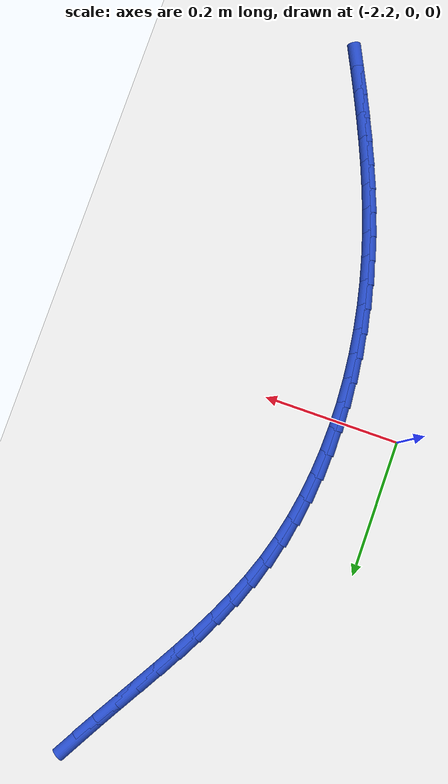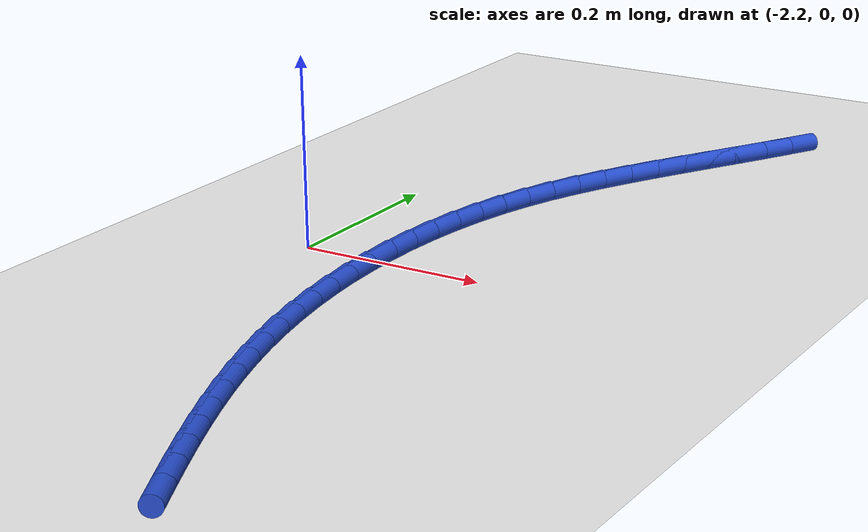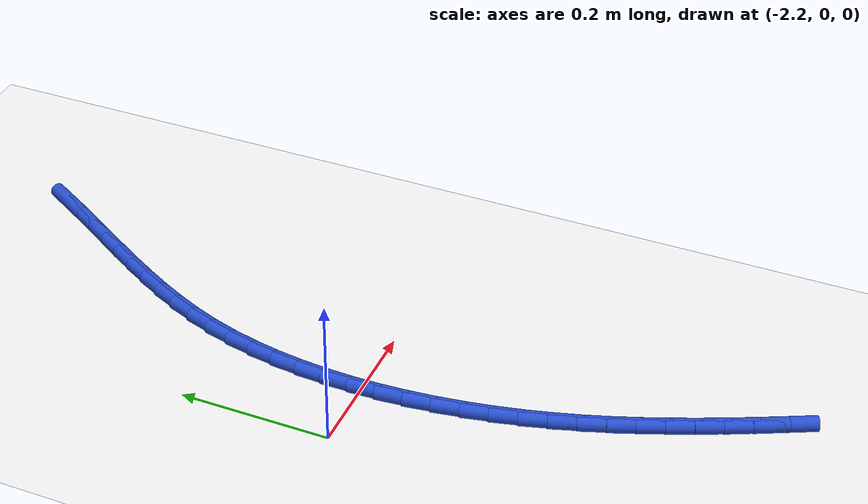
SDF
<sdf version="1.6">
 <world name="default">
  <model name="ground_plane">
   <static>1</static>
   <link name="link">
    <collision name="collision">
     <geometry><plane><normal>0 0 1</normal><size>100 100</size></plane></geometry>
     <surface><friction><ode><mu>100</mu><mu2>50</mu2></ode></friction></surface>
    </collision>
    <visual name="visual">
     <cast_shadows>0</cast_shadows>
     <geometry><plane><normal>0 0 1</normal><size>100 100</size></plane></geometry>
     <material>
      <script><uri>file://media/materials/scripts/gazebo.material</uri><name>Gazebo/WhiteGlow</name></script>
     </material>
    </visual>
   </link>
  </model>
  <model name="line">
   <link name="link_80">
    <pose>-1.9100694375321152 0.5332249161558642 0.01 0 1.57 1.0468837242007711</pose>
    <collision name="collision">
     <geometry><cylinder><radius>0.01</radius><length>0.08</length></cylinder></geometry>
    </collision>
    <visual name="visual">
     <material>
      <script><name>Gazebo/Blue</name><uri>file://media/materials/scripts/gazebo.material</uri></script>
     </material>
     <geometry><cylinder><radius>0.01</radius><length>0.08</length></cylinder></geometry>
    </visual>
   </link>
   <link name="link_81">
    <pose>-1.9280093425325109 0.5021745970844498 0.01 0 1.57 1.0333127197407073</pose>
    <collision name="collision">
     <geometry><cylinder><radius>0.01</radius><length>0.08</length></cylinder></geometry>
    </collision>
    <visual name="visual">
     <material>
      <script><name>Gazebo/Blue</name><uri>file://media/materials/scripts/gazebo.material</uri></script>
     </material>
     <geometry><cylinder><radius>0.01</radius><length>0.08</length></cylinder></geometry>
    </visual>
   </link>
   <link name="link_82">
    <pose>-1.946353771208603 0.47139608739009886 0.01 0 1.57 1.027797524962692</pose>
    <collision name="collision">
     <geometry><cylinder><radius>0.01</radius><length>0.08</length></cylinder></geometry>
    </collision>
    <visual name="visual">
     <material>
      <script><name>Gazebo/Blue</name><uri>file://media/materials/scripts/gazebo.material</uri></script>
     </material>
     <geometry><cylinder><radius>0.01</radius><length>0.08</length></cylinder></geometry>
    </visual>
   </link>
   <link name="link_83">
    <pose>-1.9648371223148928 0.44076983398572844 0.01 0 1.57 1.030363795955081</pose>
    <collision name="collision">
     <geometry><cylinder><radius>0.01</radius><length>0.08</length></cylinder></geometry>
    </collision>
    <visual name="visual">
     <material>
      <script><name>Gazebo/Blue</name><uri>file://media/materials/scripts/gazebo.material</uri></script>
     </material>
     <geometry><cylinder><radius>0.01</radius><length>0.08</length></cylinder></geometry>
    </visual>
   </link>
   <link name="link_84">
    <pose>-1.9831937946058846 0.4101762837842545 0.01 0 1.57 1.0410821133472825</pose>
    <collision name="collision">
     <geometry><cylinder><radius>0.01</radius><length>0.08</length></cylinder></geometry>
    </collision>
    <visual name="visual">
     <material>
      <script><name>Gazebo/Blue</name><uri>file://media/materials/scripts/gazebo.material</uri></script>
     </material>
     <geometry><cylinder><radius>0.01</radius><length>0.08</length></cylinder></geometry>
    </visual>
   </link>
   <link name="link_85">
    <pose>-2.001158186836081 0.37949588369859394 0.01 0 1.57 1.0600640031474318</pose>
    <collision name="collision">
     <geometry><cylinder><radius>0.01</radius><length>0.08</length></cylinder></geometry>
    </collision>
    <visual name="visual">
     <material>
      <script><name>Gazebo/Blue</name><uri>file://media/materials/scripts/gazebo.material</uri></script>
     </material>
     <geometry><cylinder><radius>0.01</radius><length>0.08</length></cylinder></geometry>
    </visual>
   </link>
   <link name="link_86">
    <pose>-2.0184646977599856 0.34860908064166385 0.01 0 1.57 1.0874415083119322</pose>
    <collision name="collision">
     <geometry><cylinder><radius>0.01</radius><length>0.08</length></cylinder></geometry>
    </collision>
    <visual name="visual">
     <material>
      <script><name>Gazebo/Blue</name><uri>file://media/materials/scripts/gazebo.material</uri></script>
     </material>
     <geometry><cylinder><radius>0.01</radius><length>0.08</length></cylinder></geometry>
    </visual>
   </link>
   <link name="link_87">
    <pose>-2.034847726132102 0.3173963215263802 0.01 0 1.57 1.12332831876361</pose>
    <collision name="collision">
     <geometry><cylinder><radius>0.01</radius><length>0.08</length></cylinder></geometry>
    </collision>
    <visual name="visual">
     <material>
      <script><name>Gazebo/Blue</name><uri>file://media/materials/scripts/gazebo.material</uri></script>
     </material>
     <geometry><cylinder><radius>0.01</radius><length>0.08</length></cylinder></geometry>
    </visual>
   </link>
   <link name="link_88">
    <pose>-2.0500416707069316 0.2857380532656597 0.01 0 1.57 1.1677606472636122</pose>
    <collision name="collision">
     <geometry><cylinder><radius>0.01</radius><length>0.08</length></cylinder></geometry>
    </collision>
    <visual name="visual">
     <material>
      <script><name>Gazebo/Blue</name><uri>file://media/materials/scripts/gazebo.material</uri></script>
     </material>
     <geometry><cylinder><radius>0.01</radius><length>0.08</length></cylinder></geometry>
    </visual>
   </link>
   <link name="link_89">
    <pose>-2.0637809302389796 0.2535147227724192 0.01 0 1.57 1.220618413463724</pose>
    <collision name="collision">
     <geometry><cylinder><radius>0.01</radius><length>0.08</length></cylinder></geometry>
    </collision>
    <visual name="visual">
     <material>
      <script><name>Gazebo/Blue</name><uri>file://media/materials/scripts/gazebo.material</uri></script>
     </material>
     <geometry><cylinder><radius>0.01</radius><length>0.08</length></cylinder></geometry>
    </visual>
   </link>
   <link name="link_90">
    <pose>-2.075799903482748 0.2206067769595757 0.01 0 1.57 1.2797369807946914</pose>
    <collision name="collision">
     <geometry><cylinder><radius>0.01</radius><length>0.08</length></cylinder></geometry>
    </collision>
    <visual name="visual">
     <material>
      <script><name>Gazebo/Blue</name><uri>file://media/materials/scripts/gazebo.material</uri></script>
     </material>
     <geometry><cylinder><radius>0.01</radius><length>0.08</length></cylinder></geometry>
    </visual>
   </link>
   <link name="link_91">
    <pose>-2.085887430314045 0.18693306636379878 0.01 0 1.57 1.3375905467505356</pose>
    <collision name="collision">
     <geometry><cylinder><radius>0.01</radius><length>0.08</length></cylinder></geometry>
    </collision>
    <visual name="visual">
     <material>
      <script><name>Gazebo/Blue</name><uri>file://media/materials/scripts/gazebo.material</uri></script>
     </material>
     <geometry><cylinder><radius>0.01</radius><length>0.08</length></cylinder></geometry>
    </visual>
   </link>
   <link name="link_92">
    <pose>-2.094050477713922 0.15256631181464986 0.01 0 1.57 1.3924423416790535</pose>
    <collision name="collision">
     <geometry><cylinder><radius>0.01</radius><length>0.08</length></cylinder></geometry>
    </collision>
    <visual name="visual">
     <material>
      <script><name>Gazebo/Blue</name><uri>file://media/materials/scripts/gazebo.material</uri></script>
     </material>
     <geometry><cylinder><radius>0.01</radius><length>0.08</length></cylinder></geometry>
    </visual>
   </link>
   <link name="link_93">
    <pose>-2.10035063524566 0.11761776577083377 0.01 0 1.57 1.4444549889144385</pose>
    <collision name="collision">
     <geometry><cylinder><radius>0.01</radius><length>0.08</length></cylinder></geometry>
    </collision>
    <visual name="visual">
     <material>
      <script><name>Gazebo/Blue</name><uri>file://media/materials/scripts/gazebo.material</uri></script>
     </material>
     <geometry><cylinder><radius>0.01</radius><length>0.08</length></cylinder></geometry>
    </visual>
   </link>
   <link name="link_94">
    <pose>-2.1048494924725465 0.08219868069106086 0.01 0 1.57 1.493830939239148</pose>
    <collision name="collision">
     <geometry><cylinder><radius>0.01</radius><length>0.08</length></cylinder></geometry>
    </collision>
    <visual name="visual">
     <material>
      <script><name>Gazebo/Blue</name><uri>file://media/materials/scripts/gazebo.material</uri></script>
     </material>
     <geometry><cylinder><radius>0.01</radius><length>0.08</length></cylinder></geometry>
    </visual>
   </link>
   <link name="link_95">
    <pose>-2.1076086389578683 0.04642030903404255 0.01 0 1.57 1.540798856566385</pose>
    <collision name="collision">
     <geometry><cylinder><radius>0.01</radius><length>0.08</length></cylinder></geometry>
    </collision>
    <visual name="visual">
     <material>
      <script><name>Gazebo/Blue</name><uri>file://media/materials/scripts/gazebo.material</uri></script>
     </material>
     <geometry><cylinder><radius>0.01</radius><length>0.08</length></cylinder></geometry>
    </visual>
   </link>
   <link name="link_96">
    <pose>-2.1086896642649138 0.010393903258489863 0.01 0 1.57 -1.5559893584545303</pose>
    <collision name="collision">
     <geometry><cylinder><radius>0.01</radius><length>0.08</length></cylinder></geometry>
    </collision>
    <visual name="visual">
     <material>
      <script><name>Gazebo/Blue</name><uri>file://media/materials/scripts/gazebo.material</uri></script>
     </material>
     <geometry><cylinder><radius>0.01</radius><length>0.08</length></cylinder></geometry>
    </visual>
   </link>
   <link name="link_97">
    <pose>-2.108154157956972 -0.025769284176886068 0.01 0 1.57 -1.513095251730046</pose>
    <collision name="collision">
     <geometry><cylinder><radius>0.01</radius><length>0.08</length></cylinder></geometry>
    </collision>
    <visual name="visual">
     <material>
      <script><name>Gazebo/Blue</name><uri>file://media/materials/scripts/gazebo.material</uri></script>
     </material>
     <geometry><cylinder><radius>0.01</radius><length>0.08</length></cylinder></geometry>
    </visual>
   </link>
   <link name="link_98">
    <pose>-2.1060637095973296 -0.06195800081337346 0.01 0 1.57 -1.471854429295454</pose>
    <collision name="collision">
     <geometry><cylinder><radius>0.01</radius><length>0.08</length></cylinder></geometry>
    </collision>
    <visual name="visual">
     <material>
      <script><name>Gazebo/Blue</name><uri>file://media/materials/scripts/gazebo.material</uri></script>
     </material>
     <geometry><cylinder><radius>0.01</radius><length>0.08</length></cylinder></geometry>
    </visual>
   </link>
   <link name="link_99">
    <pose>-2.1024799087492756 -0.0980609941922628 0.01 0 1.57 -1.4320084774964594</pose>
    <collision name="collision">
     <geometry><cylinder><radius>0.01</radius><length>0.08</length></cylinder></geometry>
    </collision>
    <visual name="visual">
     <material>
      <script><name>Gazebo/Blue</name><uri>file://media/materials/scripts/gazebo.material</uri></script>
     </material>
     <geometry><cylinder><radius>0.01</radius><length>0.08</length></cylinder></geometry>
    </visual>
   </link>
   <link name="link_100">
    <pose>-2.097464344976098 -0.13396701185484225 0.01 0 1.57 -1.3932983987134107</pose>
    <collision name="collision">
     <geometry><cylinder><radius>0.01</radius><length>0.08</length></cylinder></geometry>
    </collision>
    <visual name="visual">
     <material>
      <script><name>Gazebo/Blue</name><uri>file://media/materials/scripts/gazebo.material</uri></script>
     </material>
     <geometry><cylinder><radius>0.01</radius><length>0.08</length></cylinder></geometry>
    </visual>
   </link>
   <link name="link_101">
    <pose>-2.0910786078410837 -0.1695648013424007 0.01 0 1.57 -1.3554639687054484</pose>
    <collision name="collision">
     <geometry><cylinder><radius>0.01</radius><length>0.08</length></cylinder></geometry>
    </collision>
    <visual name="visual">
     <material>
      <script><name>Gazebo/Blue</name><uri>file://media/materials/scripts/gazebo.material</uri></script>
     </material>
     <geometry><cylinder><radius>0.01</radius><length>0.08</length></cylinder></geometry>
    </visual>
   </link>
   <link name="link_102">
    <pose>-2.0833842869075223 -0.20474311019622715 0.01 0 1.57 -1.3182588748457211</pose>
    <collision name="collision">
     <geometry><cylinder><radius>0.01</radius><length>0.08</length></cylinder></geometry>
    </collision>
    <visual name="visual">
     <material>
      <script><name>Gazebo/Blue</name><uri>file://media/materials/scripts/gazebo.material</uri></script>
     </material>
     <geometry><cylinder><radius>0.01</radius><length>0.08</length></cylinder></geometry>
    </visual>
   </link>
   <link name="link_103">
    <pose>-2.074443264861727 -0.23939197988669683 0.01 0 1.57 -1.282421338398297</pose>
    <collision name="collision">
     <geometry><cylinder><radius>0.01</radius><length>0.08</length></cylinder></geometry>
    </collision>
    <visual name="visual">
     <material>
      <script><name>Gazebo/Blue</name><uri>file://media/materials/scripts/gazebo.material</uri></script>
     </material>
     <geometry><cylinder><radius>0.01</radius><length>0.08</length></cylinder></geometry>
    </visual>
   </link>
   <link name="link_104">
    <pose>-2.064333504805873 -0.27347243545058886 0.01 0 1.57 -1.2494934949625074</pose>
    <collision name="collision">
     <geometry><cylinder><radius>0.01</radius><length>0.08</length></cylinder></geometry>
    </collision>
    <visual name="visual">
     <material>
      <script><name>Gazebo/Blue</name><uri>file://media/materials/scripts/gazebo.material</uri></script>
     </material>
     <geometry><cylinder><radius>0.01</radius><length>0.08</length></cylinder></geometry>
    </visual>
   </link>
   <link name="link_105">
    <pose>-2.0531570645627077 -0.30705186293004955 0.01 0 1.57 -1.219818836179564</pose>
    <collision name="collision">
     <geometry><cylinder><radius>0.01</radius><length>0.08</length></cylinder></geometry>
    </collision>
    <visual name="visual">
     <material>
      <script><name>Gazebo/Blue</name><uri>file://media/materials/scripts/gazebo.material</uri></script>
     </material>
     <geometry><cylinder><radius>0.01</radius><length>0.08</length></cylinder></geometry>
    </visual>
   </link>
   <link name="link_106">
    <pose>-2.0410179805657016 -0.3402063825222918 0.01 0 1.57 -1.1935685084286967</pose>
    <collision name="collision">
     <geometry><cylinder><radius>0.01</radius><length>0.08</length></cylinder></geometry>
    </collision>
    <visual name="visual">
     <material>
      <script><name>Gazebo/Blue</name><uri>file://media/materials/scripts/gazebo.material</uri></script>
     </material>
     <geometry><cylinder><radius>0.01</radius><length>0.08</length></cylinder></geometry>
    </visual>
   </link>
   <link name="link_107">
    <pose>-2.0280202892483246 -0.37301211442452675 0.01 0 1.57 -1.1708614371023203</pose>
    <collision name="collision">
     <geometry><cylinder><radius>0.01</radius><length>0.08</length></cylinder></geometry>
    </collision>
    <visual name="visual">
     <material>
      <script><name>Gazebo/Blue</name><uri>file://media/materials/scripts/gazebo.material</uri></script>
     </material>
     <geometry><cylinder><radius>0.01</radius><length>0.08</length></cylinder></geometry>
    </visual>
   </link>
   <link name="link_108">
    <pose>-2.014268027044046 -0.40554517883396596 0.01 0 1.57 -1.1517714535835317</pose>
    <collision name="collision">
     <geometry><cylinder><radius>0.01</radius><length>0.08</length></cylinder></geometry>
    </collision>
    <visual name="visual">
     <material>
      <script><name>Gazebo/Blue</name><uri>file://media/materials/scripts/gazebo.material</uri></script>
     </material>
     <geometry><cylinder><radius>0.01</radius><length>0.08</length></cylinder></geometry>
    </visual>
   </link>
   <link name="link_109">
    <pose>-1.9998652303863362 -0.437881695947821 0.01 0 1.57 -1.1363349049956704</pose>
    <collision name="collision">
     <geometry><cylinder><radius>0.01</radius><length>0.08</length></cylinder></geometry>
    </collision>
    <visual name="visual">
     <material>
      <script><name>Gazebo/Blue</name><uri>file://media/materials/scripts/gazebo.material</uri></script>
     </material>
     <geometry><cylinder><radius>0.01</radius><length>0.08</length></cylinder></geometry>
    </visual>
   </link>
   <link name="link_110">
    <pose>-1.9849159357086652 -0.47009778596330354 0.01 0 1.57 -1.1245579448075023</pose>
    <collision name="collision">
     <geometry><cylinder><radius>0.01</radius><length>0.08</length></cylinder></geometry>
    </collision>
    <visual name="visual">
     <material>
      <script><name>Gazebo/Blue</name><uri>file://media/materials/scripts/gazebo.material</uri></script>
     </material>
     <geometry><cylinder><radius>0.01</radius><length>0.08</length></cylinder></geometry>
    </visual>
   </link>
   <link name="link_111">
    <pose>-1.9695241794445029 -0.5022695690776252 0.01 0 1.57 -1.1163938345402686</pose>
    <collision name="collision">
     <geometry><cylinder><radius>0.01</radius><length>0.08</length></cylinder></geometry>
    </collision>
    <visual name="visual">
     <material>
      <script><name>Gazebo/Blue</name><uri>file://media/materials/scripts/gazebo.material</uri></script>
     </material>
     <geometry><cylinder><radius>0.01</radius><length>0.08</length></cylinder></geometry>
    </visual>
   </link>
  </model>
 </world>
</sdf>
